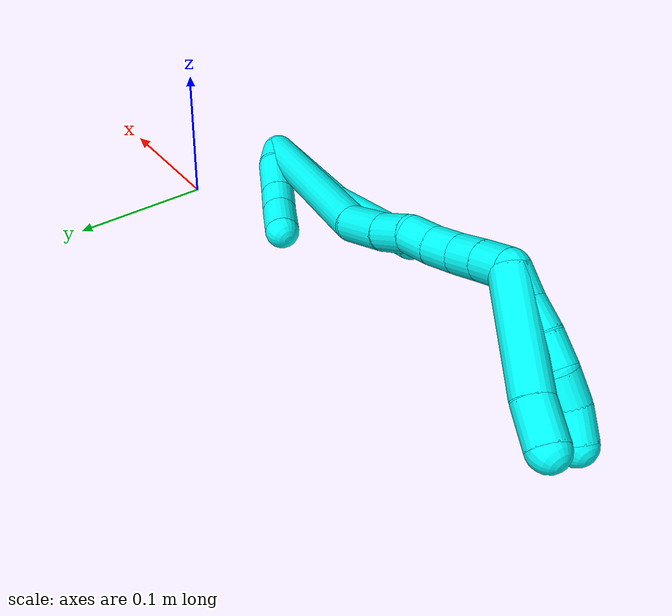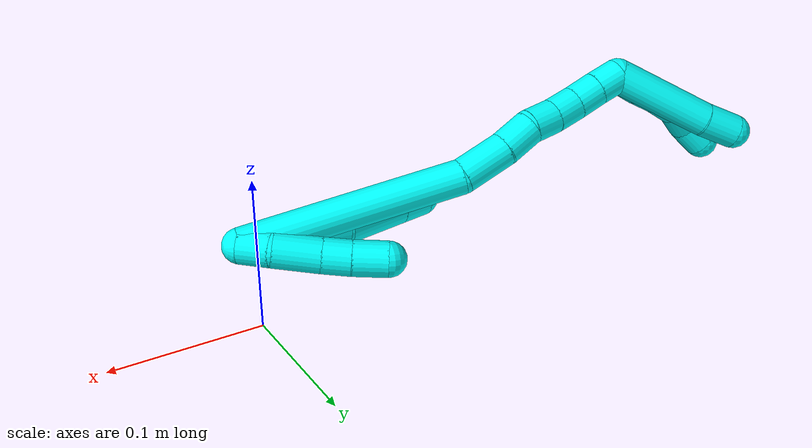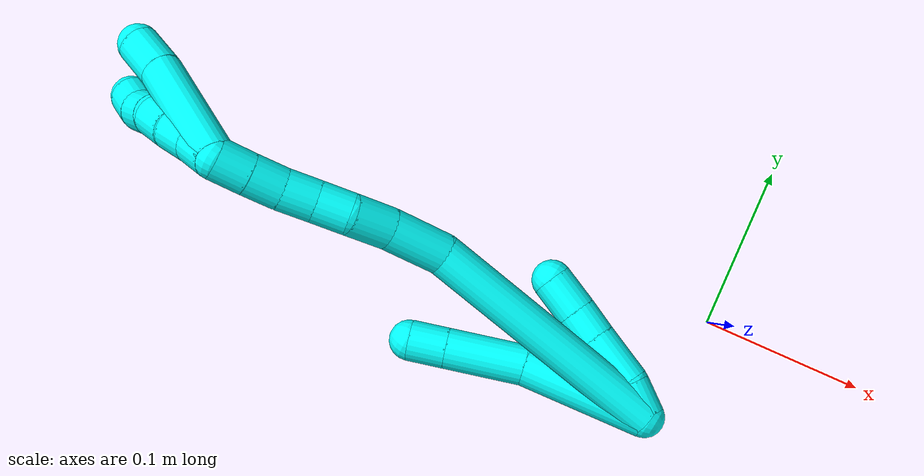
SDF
<sdf version="1.7">
 <world name="default">
  <model name="3">
   <static>0</static>
   <link name="3">
    <collision name="collision-cylinder-e_1_2_8">
     <pose>0.003504 0.00449 0.03862 -0.115741 0.089891 -0.005211</pose>
     <geometry><cylinder><radius>0.0125</radius><length>0.078076</length></cylinder></geometry>
     <surface>
      <friction><ode><mu>1.16</mu><mu2>1.16</mu2><slip1>0</slip1><slip2>0</slip2></ode></friction>
      <contact><ode><kp>1e+06</kp><kd>1</kd><max_vel>0</max_vel><min_depth>0.001</min_depth></ode></contact>
     </surface>
    </collision>
    <visual name="visual-cylinder-e_1_2_8">
     <pose>0.003504 0.00449 0.03862 -0.115741 0.089891 -0.005211</pose>
     <geometry><cylinder><radius>0.0125</radius><length>0.078076</length></cylinder></geometry>
     <material><ambient>0.003922 1 0.996078 1</ambient></material>
    </visual>
    <collision name="collision-cylinder-e_2_8_9">
     <pose>0.010168 0.016568 0.100272 -0.318256 0.129555 -0.02082</pose>
     <geometry><cylinder><radius>0.0125</radius><length>0.04891</length></cylinder></geometry>
     <surface>
      <friction><ode><mu>1.16</mu><mu2>1.16</mu2><slip1>0</slip1><slip2>0</slip2></ode></friction>
      <contact><ode><kp>1e+06</kp><kd>1</kd><max_vel>0</max_vel><min_depth>0.001</min_depth></ode></contact>
     </surface>
    </collision>
    <visual name="visual-cylinder-e_2_8_9">
     <pose>0.010168 0.016568 0.100272 -0.318256 0.129555 -0.02082</pose>
     <geometry><cylinder><radius>0.0125</radius><length>0.04891</length></cylinder></geometry>
     <material><ambient>0.003922 1 0.996078 1</ambient></material>
    </visual>
    <collision name="collision-cylinder-e_3_9_6">
     <pose>0.014789 0.027729 0.134145 -0.318373 0.127332 -0.020469</pose>
     <geometry><cylinder><radius>0.0125</radius><length>0.023015</length></cylinder></geometry>
     <surface>
      <friction><ode><mu>1.16</mu><mu2>1.16</mu2><slip1>0</slip1><slip2>0</slip2></ode></friction>
      <contact><ode><kp>1e+06</kp><kd>1</kd><max_vel>0</max_vel><min_depth>0.001</min_depth></ode></contact>
     </surface>
    </collision>
    <visual name="visual-cylinder-e_3_9_6">
     <pose>0.014789 0.027729 0.134145 -0.318373 0.127332 -0.020469</pose>
     <geometry><cylinder><radius>0.0125</radius><length>0.023015</length></cylinder></geometry>
     <material><ambient>0.003922 1 0.996078 1</ambient></material>
    </visual>
    <collision name="collision-cylinder-e_1_2_10">
     <pose>-0.003613 -0.005029 0.00914 0.503021 -0.333408 -0.086418</pose>
     <geometry><cylinder><radius>0.0125</radius><length>0.02208</length></cylinder></geometry>
     <surface>
      <friction><ode><mu>1.16</mu><mu2>1.16</mu2><slip1>0</slip1><slip2>0</slip2></ode></friction>
      <contact><ode><kp>1e+06</kp><kd>1</kd><max_vel>0</max_vel><min_depth>0.001</min_depth></ode></contact>
     </surface>
    </collision>
    <visual name="visual-cylinder-e_1_2_10">
     <pose>-0.003613 -0.005029 0.00914 0.503021 -0.333408 -0.086418</pose>
     <geometry><cylinder><radius>0.0125</radius><length>0.02208</length></cylinder></geometry>
     <material><ambient>0.003922 1 0.996078 1</ambient></material>
    </visual>
    <collision name="collision-cylinder-e_2_10_11">
     <pose>-0.009462 -0.015893 0.03366 0.36263 -0.135101 -0.024804</pose>
     <geometry><cylinder><radius>0.0125</radius><length>0.033202</length></cylinder></geometry>
     <surface>
      <friction><ode><mu>1.16</mu><mu2>1.16</mu2><slip1>0</slip1><slip2>0</slip2></ode></friction>
      <contact><ode><kp>1e+06</kp><kd>1</kd><max_vel>0</max_vel><min_depth>0.001</min_depth></ode></contact>
     </surface>
    </collision>
    <visual name="visual-cylinder-e_2_10_11">
     <pose>-0.009462 -0.015893 0.03366 0.36263 -0.135101 -0.024804</pose>
     <geometry><cylinder><radius>0.0125</radius><length>0.033202</length></cylinder></geometry>
     <material><ambient>0.003922 1 0.996078 1</ambient></material>
    </visual>
    <collision name="collision-cylinder-e_3_11_12">
     <pose>-0.013558 -0.025217 0.058283 0.360828 -0.186048 -0.03403</pose>
     <geometry><cylinder><radius>0.0125</radius><length>0.020106</length></cylinder></geometry>
     <surface>
      <friction><ode><mu>1.16</mu><mu2>1.16</mu2><slip1>0</slip1><slip2>0</slip2></ode></friction>
      <contact><ode><kp>1e+06</kp><kd>1</kd><max_vel>0</max_vel><min_depth>0.001</min_depth></ode></contact>
     </surface>
    </collision>
    <visual name="visual-cylinder-e_3_11_12">
     <pose>-0.013558 -0.025217 0.058283 0.360828 -0.186048 -0.03403</pose>
     <geometry><cylinder><radius>0.0125</radius><length>0.020106</length></cylinder></geometry>
     <material><ambient>0.003922 1 0.996078 1</ambient></material>
    </visual>
    <collision name="collision-cylinder-e_4_12_5">
     <pose>-0.018008 -0.03238 0.078981 0.31047 -0.212092 -0.033313</pose>
     <geometry><cylinder><radius>0.0125</radius><length>0.024612</length></cylinder></geometry>
     <surface>
      <friction><ode><mu>1.16</mu><mu2>1.16</mu2><slip1>0</slip1><slip2>0</slip2></ode></friction>
      <contact><ode><kp>1e+06</kp><kd>1</kd><max_vel>0</max_vel><min_depth>0.001</min_depth></ode></contact>
     </surface>
    </collision>
    <visual name="visual-cylinder-e_4_12_5">
     <pose>-0.018008 -0.03238 0.078981 0.31047 -0.212092 -0.033313</pose>
     <geometry><cylinder><radius>0.0125</radius><length>0.024612</length></cylinder></geometry>
     <material><ambient>0.003922 1 0.996078 1</ambient></material>
    </visual>
    <collision name="collision-cylinder-e_1_2_13">
     <pose>-0.02366 0.003061 0.074941 -0.04082 -0.305572 0.006287</pose>
     <geometry><cylinder><radius>0.0125</radius><length>0.157294</length></cylinder></geometry>
     <surface>
      <friction><ode><mu>1.16</mu><mu2>1.16</mu2><slip1>0</slip1><slip2>0</slip2></ode></friction>
      <contact><ode><kp>1e+06</kp><kd>1</kd><max_vel>0</max_vel><min_depth>0.001</min_depth></ode></contact>
     </surface>
    </collision>
    <visual name="visual-cylinder-e_1_2_13">
     <pose>-0.02366 0.003061 0.074941 -0.04082 -0.305572 0.006287</pose>
     <geometry><cylinder><radius>0.0125</radius><length>0.157294</length></cylinder></geometry>
     <material><ambient>0.003922 1 0.996078 1</ambient></material>
    </visual>
    <collision name="collision-cylinder-e_2_13_14">
     <pose>-0.053112 0.0119 0.16593 -0.345642 -0.327341 0.057641</pose>
     <geometry><cylinder><radius>0.0125</radius><length>0.036026</length></cylinder></geometry>
     <surface>
      <friction><ode><mu>1.16</mu><mu2>1.16</mu2><slip1>0</slip1><slip2>0</slip2></ode></friction>
      <contact><ode><kp>1e+06</kp><kd>1</kd><max_vel>0</max_vel><min_depth>0.001</min_depth></ode></contact>
     </surface>
    </collision>
    <visual name="visual-cylinder-e_2_13_14">
     <pose>-0.053112 0.0119 0.16593 -0.345642 -0.327341 0.057641</pose>
     <geometry><cylinder><radius>0.0125</radius><length>0.036026</length></cylinder></geometry>
     <material><ambient>0.003922 1 0.996078 1</ambient></material>
    </visual>
    <collision name="collision-cylinder-e_3_14_15">
     <pose>-0.063196 0.023038 0.192443 -0.473243 -0.350098 0.085244</pose>
     <geometry><cylinder><radius>0.0125</radius><length>0.025033</length></cylinder></geometry>
     <surface>
      <friction><ode><mu>1.16</mu><mu2>1.16</mu2><slip1>0</slip1><slip2>0</slip2></ode></friction>
      <contact><ode><kp>1e+06</kp><kd>1</kd><max_vel>0</max_vel><min_depth>0.001</min_depth></ode></contact>
     </surface>
    </collision>
    <visual name="visual-cylinder-e_3_14_15">
     <pose>-0.063196 0.023038 0.192443 -0.473243 -0.350098 0.085244</pose>
     <geometry><cylinder><radius>0.0125</radius><length>0.025033</length></cylinder></geometry>
     <material><ambient>0.003922 1 0.996078 1</ambient></material>
    </visual>
    <collision name="collision-cylinder-e_4_15_16">
     <pose>-0.06843 0.031355 0.212689 -0.293688 -0.091819 0.01359</pose>
     <geometry><cylinder><radius>0.0125</radius><length>0.020525</length></cylinder></geometry>
     <surface>
      <friction><ode><mu>1.16</mu><mu2>1.16</mu2><slip1>0</slip1><slip2>0</slip2></ode></friction>
      <contact><ode><kp>1e+06</kp><kd>1</kd><max_vel>0</max_vel><min_depth>0.001</min_depth></ode></contact>
     </surface>
    </collision>
    <visual name="visual-cylinder-e_4_15_16">
     <pose>-0.06843 0.031355 0.212689 -0.293688 -0.091819 0.01359</pose>
     <geometry><cylinder><radius>0.0125</radius><length>0.020525</length></cylinder></geometry>
     <material><ambient>0.003922 1 0.996078 1</ambient></material>
    </visual>
    <collision name="collision-cylinder-e_5_16_17">
     <pose>-0.071208 0.037861 0.23188 -0.360603 -0.180633 0.033013</pose>
     <geometry><cylinder><radius>0.0125</radius><length>0.020443</length></cylinder></geometry>
     <surface>
      <friction><ode><mu>1.16</mu><mu2>1.16</mu2><slip1>0</slip1><slip2>0</slip2></ode></friction>
      <contact><ode><kp>1e+06</kp><kd>1</kd><max_vel>0</max_vel><min_depth>0.001</min_depth></ode></contact>
     </surface>
    </collision>
    <visual name="visual-cylinder-e_5_16_17">
     <pose>-0.071208 0.037861 0.23188 -0.360603 -0.180633 0.033013</pose>
     <geometry><cylinder><radius>0.0125</radius><length>0.020443</length></cylinder></geometry>
     <material><ambient>0.003922 1 0.996078 1</ambient></material>
    </visual>
    <collision name="collision-cylinder-e_6_17_18">
     <pose>-0.076068 0.04477 0.250379 -0.354195 -0.302418 0.054527</pose>
     <geometry><cylinder><radius>0.0125</radius><length>0.020307</length></cylinder></geometry>
     <surface>
      <friction><ode><mu>1.16</mu><mu2>1.16</mu2><slip1>0</slip1><slip2>0</slip2></ode></friction>
      <contact><ode><kp>1e+06</kp><kd>1</kd><max_vel>0</max_vel><min_depth>0.001</min_depth></ode></contact>
     </surface>
    </collision>
    <visual name="visual-cylinder-e_6_17_18">
     <pose>-0.076068 0.04477 0.250379 -0.354195 -0.302418 0.054527</pose>
     <geometry><cylinder><radius>0.0125</radius><length>0.020307</length></cylinder></geometry>
     <material><ambient>0.003922 1 0.996078 1</ambient></material>
    </visual>
    <collision name="collision-cylinder-e_7_18_1">
     <pose>-0.082091 0.051226 0.2687 -0.323402 -0.298879 0.049111</pose>
     <geometry><cylinder><radius>0.0125</radius><length>0.020372</length></cylinder></geometry>
     <surface>
      <friction><ode><mu>1.16</mu><mu2>1.16</mu2><slip1>0</slip1><slip2>0</slip2></ode></friction>
      <contact><ode><kp>1e+06</kp><kd>1</kd><max_vel>0</max_vel><min_depth>0.001</min_depth></ode></contact>
     </surface>
    </collision>
    <visual name="visual-cylinder-e_7_18_1">
     <pose>-0.082091 0.051226 0.2687 -0.323402 -0.298879 0.049111</pose>
     <geometry><cylinder><radius>0.0125</radius><length>0.020372</length></cylinder></geometry>
     <material><ambient>0.003922 1 0.996078 1</ambient></material>
    </visual>
    <collision name="collision-cylinder-e_1_1_19">
     <pose>-0.079415 0.035801 0.309314 0.533085 0.154503 0.042263</pose>
     <geometry><cylinder><radius>0.0125</radius><length>0.07376</length></cylinder></geometry>
     <surface>
      <friction><ode><mu>1.16</mu><mu2>1.16</mu2><slip1>0</slip1><slip2>0</slip2></ode></friction>
      <contact><ode><kp>1e+06</kp><kd>1</kd><max_vel>0</max_vel><min_depth>0.001</min_depth></ode></contact>
     </surface>
    </collision>
    <visual name="visual-cylinder-e_1_1_19">
     <pose>-0.079415 0.035801 0.309314 0.533085 0.154503 0.042263</pose>
     <geometry><cylinder><radius>0.0125</radius><length>0.07376</length></cylinder></geometry>
     <material><ambient>0.003922 1 0.996078 1</ambient></material>
    </visual>
    <collision name="collision-cylinder-e_2_19_4">
     <pose>-0.071729 0.012086 0.352577 0.412377 0.153878 0.032246</pose>
     <geometry><cylinder><radius>0.0125</radius><length>0.02624</length></cylinder></geometry>
     <surface>
      <friction><ode><mu>1.16</mu><mu2>1.16</mu2><slip1>0</slip1><slip2>0</slip2></ode></friction>
      <contact><ode><kp>1e+06</kp><kd>1</kd><max_vel>0</max_vel><min_depth>0.001</min_depth></ode></contact>
     </surface>
    </collision>
    <visual name="visual-cylinder-e_2_19_4">
     <pose>-0.071729 0.012086 0.352577 0.412377 0.153878 0.032246</pose>
     <geometry><cylinder><radius>0.0125</radius><length>0.02624</length></cylinder></geometry>
     <material><ambient>0.003922 1 0.996078 1</ambient></material>
    </visual>
    <collision name="collision-cylinder-e_1_1_20">
     <pose>-0.081208 0.051219 0.286608 0.34317 0.398748 0.07</pose>
     <geometry><cylinder><radius>0.0125</radius><length>0.02</length></cylinder></geometry>
     <surface>
      <friction><ode><mu>1.16</mu><mu2>1.16</mu2><slip1>0</slip1><slip2>0</slip2></ode></friction>
      <contact><ode><kp>1e+06</kp><kd>1</kd><max_vel>0</max_vel><min_depth>0.001</min_depth></ode></contact>
     </surface>
    </collision>
    <visual name="visual-cylinder-e_1_1_20">
     <pose>-0.081208 0.051219 0.286608 0.34317 0.398748 0.07</pose>
     <geometry><cylinder><radius>0.0125</radius><length>0.02</length></cylinder></geometry>
     <material><ambient>0.003922 1 0.996078 1</ambient></material>
    </visual>
    <collision name="collision-cylinder-e_2_20_21">
     <pose>-0.073659 0.045913 0.304325 0.239238 0.375338 0.045642</pose>
     <geometry><cylinder><radius>0.0125</radius><length>0.02</length></cylinder></geometry>
     <surface>
      <friction><ode><mu>1.16</mu><mu2>1.16</mu2><slip1>0</slip1><slip2>0</slip2></ode></friction>
      <contact><ode><kp>1e+06</kp><kd>1</kd><max_vel>0</max_vel><min_depth>0.001</min_depth></ode></contact>
     </surface>
    </collision>
    <visual name="visual-cylinder-e_2_20_21">
     <pose>-0.073659 0.045913 0.304325 0.239238 0.375338 0.045642</pose>
     <geometry><cylinder><radius>0.0125</radius><length>0.02</length></cylinder></geometry>
     <material><ambient>0.003922 1 0.996078 1</ambient></material>
    </visual>
    <collision name="collision-cylinder-e_3_21_22">
     <pose>-0.065904 0.040646 0.321961 0.342228 0.421302 0.073865</pose>
     <geometry><cylinder><radius>0.0125</radius><length>0.02</length></cylinder></geometry>
     <surface>
      <friction><ode><mu>1.16</mu><mu2>1.16</mu2><slip1>0</slip1><slip2>0</slip2></ode></friction>
      <contact><ode><kp>1e+06</kp><kd>1</kd><max_vel>0</max_vel><min_depth>0.001</min_depth></ode></contact>
     </surface>
    </collision>
    <visual name="visual-cylinder-e_3_21_22">
     <pose>-0.065904 0.040646 0.321961 0.342228 0.421302 0.073865</pose>
     <geometry><cylinder><radius>0.0125</radius><length>0.02</length></cylinder></geometry>
     <material><ambient>0.003922 1 0.996078 1</ambient></material>
    </visual>
    <collision name="collision-cylinder-e_4_22_23">
     <pose>-0.055078 0.034422 0.337237 0.442046 0.739114 0.173634</pose>
     <geometry><cylinder><radius>0.0125</radius><length>0.02</length></cylinder></geometry>
     <surface>
      <friction><ode><mu>1.16</mu><mu2>1.16</mu2><slip1>0</slip1><slip2>0</slip2></ode></friction>
      <contact><ode><kp>1e+06</kp><kd>1</kd><max_vel>0</max_vel><min_depth>0.001</min_depth></ode></contact>
     </surface>
    </collision>
    <visual name="visual-cylinder-e_4_22_23">
     <pose>-0.055078 0.034422 0.337237 0.442046 0.739114 0.173634</pose>
     <geometry><cylinder><radius>0.0125</radius><length>0.02</length></cylinder></geometry>
     <material><ambient>0.003922 1 0.996078 1</ambient></material>
    </visual>
    <collision name="collision-cylinder-e_5_23_3">
     <pose>-0.043704 0.02616 0.351162 0.613466 0.482208 0.155445</pose>
     <geometry><cylinder><radius>0.0125</radius><length>0.02</length></cylinder></geometry>
     <surface>
      <friction><ode><mu>1.16</mu><mu2>1.16</mu2><slip1>0</slip1><slip2>0</slip2></ode></friction>
      <contact><ode><kp>1e+06</kp><kd>1</kd><max_vel>0</max_vel><min_depth>0.001</min_depth></ode></contact>
     </surface>
    </collision>
    <visual name="visual-cylinder-e_5_23_3">
     <pose>-0.043704 0.02616 0.351162 0.613466 0.482208 0.155445</pose>
     <geometry><cylinder><radius>0.0125</radius><length>0.02</length></cylinder></geometry>
     <material><ambient>0.003922 1 0.996078 1</ambient></material>
    </visual>
    <collision name="collision-sphere-3">
     <pose>-0.039067 0.021059 0.358406 0 -0 0</pose>
     <geometry><sphere><radius>0.0125</radius></sphere></geometry>
     <surface>
      <friction><ode><mu>1.16</mu><mu2>1.16</mu2><slip1>0</slip1><slip2>0</slip2></ode></friction>
      <contact><ode><kp>1e+06</kp><kd>1</kd><max_vel>0</max_vel><min_depth>0.001</min_depth></ode></contact>
     </surface>
    </collision>
    <visual name="visual-sphere-3">
     <pose>-0.039067 0.021059 0.358406 0 -0 0</pose>
     <geometry><sphere><radius>0.0125</radius></sphere></geometry>
     <material><ambient>0.003922 1 0.996078 1</ambient></material>
    </visual>
    <collision name="collision-sphere-23">
     <pose>-0.048342 0.03126 0.343917 0 -0 0</pose>
     <geometry><sphere><radius>0.0125</radius></sphere></geometry>
     <surface>
      <friction><ode><mu>1.16</mu><mu2>1.16</mu2><slip1>0</slip1><slip2>0</slip2></ode></friction>
      <contact><ode><kp>1e+06</kp><kd>1</kd><max_vel>0</max_vel><min_depth>0.001</min_depth></ode></contact>
     </surface>
    </collision>
    <visual name="visual-sphere-23">
     <pose>-0.048342 0.03126 0.343917 0 -0 0</pose>
     <geometry><sphere><radius>0.0125</radius></sphere></geometry>
     <material><ambient>0.003922 1 0.996078 1</ambient></material>
    </visual>
    <collision name="collision-sphere-22">
     <pose>-0.061814 0.037584 0.330557 0 -0 0</pose>
     <geometry><sphere><radius>0.0125</radius></sphere></geometry>
     <surface>
      <friction><ode><mu>1.16</mu><mu2>1.16</mu2><slip1>0</slip1><slip2>0</slip2></ode></friction>
      <contact><ode><kp>1e+06</kp><kd>1</kd><max_vel>0</max_vel><min_depth>0.001</min_depth></ode></contact>
     </surface>
    </collision>
    <visual name="visual-sphere-22">
     <pose>-0.061814 0.037584 0.330557 0 -0 0</pose>
     <geometry><sphere><radius>0.0125</radius></sphere></geometry>
     <material><ambient>0.003922 1 0.996078 1</ambient></material>
    </visual>
    <collision name="collision-sphere-21">
     <pose>-0.069993 0.043709 0.313364 0 -0 0</pose>
     <geometry><sphere><radius>0.0125</radius></sphere></geometry>
     <surface>
      <friction><ode><mu>1.16</mu><mu2>1.16</mu2><slip1>0</slip1><slip2>0</slip2></ode></friction>
      <contact><ode><kp>1e+06</kp><kd>1</kd><max_vel>0</max_vel><min_depth>0.001</min_depth></ode></contact>
     </surface>
    </collision>
    <visual name="visual-sphere-21">
     <pose>-0.069993 0.043709 0.313364 0 -0 0</pose>
     <geometry><sphere><radius>0.0125</radius></sphere></geometry>
     <material><ambient>0.003922 1 0.996078 1</ambient></material>
    </visual>
    <collision name="collision-sphere-20">
     <pose>-0.077325 0.048118 0.295286 0 -0 0</pose>
     <geometry><sphere><radius>0.0125</radius></sphere></geometry>
     <surface>
      <friction><ode><mu>1.16</mu><mu2>1.16</mu2><slip1>0</slip1><slip2>0</slip2></ode></friction>
      <contact><ode><kp>1e+06</kp><kd>1</kd><max_vel>0</max_vel><min_depth>0.001</min_depth></ode></contact>
     </surface>
    </collision>
    <visual name="visual-sphere-20">
     <pose>-0.077325 0.048118 0.295286 0 -0 0</pose>
     <geometry><sphere><radius>0.0125</radius></sphere></geometry>
     <material><ambient>0.003922 1 0.996078 1</ambient></material>
    </visual>
    <collision name="collision-sphere-4">
     <pose>-0.069718 0.006889 0.364455 0 -0 0</pose>
     <geometry><sphere><radius>0.0125</radius></sphere></geometry>
     <surface>
      <friction><ode><mu>1.16</mu><mu2>1.16</mu2><slip1>0</slip1><slip2>0</slip2></ode></friction>
      <contact><ode><kp>1e+06</kp><kd>1</kd><max_vel>0</max_vel><min_depth>0.001</min_depth></ode></contact>
     </surface>
    </collision>
    <visual name="visual-sphere-4">
     <pose>-0.069718 0.006889 0.364455 0 -0 0</pose>
     <geometry><sphere><radius>0.0125</radius></sphere></geometry>
     <material><ambient>0.003922 1 0.996078 1</ambient></material>
    </visual>
    <collision name="collision-sphere-11">
     <pose>-0.011698 -0.021729 0.049039 0 -0 0</pose>
     <geometry><sphere><radius>0.0125</radius></sphere></geometry>
     <surface>
      <friction><ode><mu>1.16</mu><mu2>1.16</mu2><slip1>0</slip1><slip2>0</slip2></ode></friction>
      <contact><ode><kp>1e+06</kp><kd>1</kd><max_vel>0</max_vel><min_depth>0.001</min_depth></ode></contact>
     </surface>
    </collision>
    <visual name="visual-sphere-11">
     <pose>-0.011698 -0.021729 0.049039 0 -0 0</pose>
     <geometry><sphere><radius>0.0125</radius></sphere></geometry>
     <material><ambient>0.003922 1 0.996078 1</ambient></material>
    </visual>
    <collision name="collision-sphere-10">
     <pose>-0.007226 -0.010058 0.01828 0 -0 0</pose>
     <geometry><sphere><radius>0.0125</radius></sphere></geometry>
     <surface>
      <friction><ode><mu>1.16</mu><mu2>1.16</mu2><slip1>0</slip1><slip2>0</slip2></ode></friction>
      <contact><ode><kp>1e+06</kp><kd>1</kd><max_vel>0</max_vel><min_depth>0.001</min_depth></ode></contact>
     </surface>
    </collision>
    <visual name="visual-sphere-10">
     <pose>-0.007226 -0.010058 0.01828 0 -0 0</pose>
     <geometry><sphere><radius>0.0125</radius></sphere></geometry>
     <material><ambient>0.003922 1 0.996078 1</ambient></material>
    </visual>
    <collision name="collision-sphere-6">
     <pose>0.01625 0.031302 0.144986 0 -0 0</pose>
     <geometry><sphere><radius>0.0125</radius></sphere></geometry>
     <surface>
      <friction><ode><mu>1.16</mu><mu2>1.16</mu2><slip1>0</slip1><slip2>0</slip2></ode></friction>
      <contact><ode><kp>1e+06</kp><kd>1</kd><max_vel>0</max_vel><min_depth>0.001</min_depth></ode></contact>
     </surface>
    </collision>
    <visual name="visual-sphere-6">
     <pose>0.01625 0.031302 0.144986 0 -0 0</pose>
     <geometry><sphere><radius>0.0125</radius></sphere></geometry>
     <material><ambient>0.003922 1 0.996078 1</ambient></material>
    </visual>
    <collision name="collision-sphere-9">
     <pose>0.013328 0.024156 0.123304 0 -0 0</pose>
     <geometry><sphere><radius>0.0125</radius></sphere></geometry>
     <surface>
      <friction><ode><mu>1.16</mu><mu2>1.16</mu2><slip1>0</slip1><slip2>0</slip2></ode></friction>
      <contact><ode><kp>1e+06</kp><kd>1</kd><max_vel>0</max_vel><min_depth>0.001</min_depth></ode></contact>
     </surface>
    </collision>
    <visual name="visual-sphere-9">
     <pose>0.013328 0.024156 0.123304 0 -0 0</pose>
     <geometry><sphere><radius>0.0125</radius></sphere></geometry>
     <material><ambient>0.003922 1 0.996078 1</ambient></material>
    </visual>
    <collision name="collision-sphere-2">
     <geometry><sphere><radius>0.0125</radius></sphere></geometry>
     <surface>
      <friction><ode><mu>1.16</mu><mu2>1.16</mu2><slip1>0</slip1><slip2>0</slip2></ode></friction>
      <contact><ode><kp>1e+06</kp><kd>1</kd><max_vel>0</max_vel><min_depth>0.001</min_depth></ode></contact>
     </surface>
    </collision>
    <visual name="visual-sphere-2">
     <geometry><sphere><radius>0.0125</radius></sphere></geometry>
     <material><ambient>0.003922 1 0.996078 1</ambient></material>
    </visual>
    <collision name="collision-sphere-19">
     <pose>-0.07374 0.017282 0.340698 0 -0 0</pose>
     <geometry><sphere><radius>0.0125</radius></sphere></geometry>
     <surface>
      <friction><ode><mu>1.16</mu><mu2>1.16</mu2><slip1>0</slip1><slip2>0</slip2></ode></friction>
      <contact><ode><kp>1e+06</kp><kd>1</kd><max_vel>0</max_vel><min_depth>0.001</min_depth></ode></contact>
     </surface>
    </collision>
    <visual name="visual-sphere-19">
     <pose>-0.07374 0.017282 0.340698 0 -0 0</pose>
     <geometry><sphere><radius>0.0125</radius></sphere></geometry>
     <material><ambient>0.003922 1 0.996078 1</ambient></material>
    </visual>
    <collision name="collision-sphere-8">
     <pose>0.007009 0.00898 0.07724 0 -0 0</pose>
     <geometry><sphere><radius>0.0125</radius></sphere></geometry>
     <surface>
      <friction><ode><mu>1.16</mu><mu2>1.16</mu2><slip1>0</slip1><slip2>0</slip2></ode></friction>
      <contact><ode><kp>1e+06</kp><kd>1</kd><max_vel>0</max_vel><min_depth>0.001</min_depth></ode></contact>
     </surface>
    </collision>
    <visual name="visual-sphere-8">
     <pose>0.007009 0.00898 0.07724 0 -0 0</pose>
     <geometry><sphere><radius>0.0125</radius></sphere></geometry>
     <material><ambient>0.003922 1 0.996078 1</ambient></material>
    </visual>
    <collision name="collision-sphere-12">
     <pose>-0.015417 -0.028704 0.067526 0 -0 0</pose>
     <geometry><sphere><radius>0.0125</radius></sphere></geometry>
     <surface>
      <friction><ode><mu>1.16</mu><mu2>1.16</mu2><slip1>0</slip1><slip2>0</slip2></ode></friction>
      <contact><ode><kp>1e+06</kp><kd>1</kd><max_vel>0</max_vel><min_depth>0.001</min_depth></ode></contact>
     </surface>
    </collision>
    <visual name="visual-sphere-12">
     <pose>-0.015417 -0.028704 0.067526 0 -0 0</pose>
     <geometry><sphere><radius>0.0125</radius></sphere></geometry>
     <material><ambient>0.003922 1 0.996078 1</ambient></material>
    </visual>
    <collision name="collision-sphere-5">
     <pose>-0.020598 -0.036055 0.090436 0 -0 0</pose>
     <geometry><sphere><radius>0.0125</radius></sphere></geometry>
     <surface>
      <friction><ode><mu>1.16</mu><mu2>1.16</mu2><slip1>0</slip1><slip2>0</slip2></ode></friction>
      <contact><ode><kp>1e+06</kp><kd>1</kd><max_vel>0</max_vel><min_depth>0.001</min_depth></ode></contact>
     </surface>
    </collision>
    <visual name="visual-sphere-5">
     <pose>-0.020598 -0.036055 0.090436 0 -0 0</pose>
     <geometry><sphere><radius>0.0125</radius></sphere></geometry>
     <material><ambient>0.003922 1 0.996078 1</ambient></material>
    </visual>
    <collision name="collision-sphere-13">
     <pose>-0.04732 0.006122 0.149882 0 -0 0</pose>
     <geometry><sphere><radius>0.0125</radius></sphere></geometry>
     <surface>
      <friction><ode><mu>1.16</mu><mu2>1.16</mu2><slip1>0</slip1><slip2>0</slip2></ode></friction>
      <contact><ode><kp>1e+06</kp><kd>1</kd><max_vel>0</max_vel><min_depth>0.001</min_depth></ode></contact>
     </surface>
    </collision>
    <visual name="visual-sphere-13">
     <pose>-0.04732 0.006122 0.149882 0 -0 0</pose>
     <geometry><sphere><radius>0.0125</radius></sphere></geometry>
     <material><ambient>0.003922 1 0.996078 1</ambient></material>
    </visual>
    <collision name="collision-sphere-14">
     <pose>-0.058903 0.017679 0.181978 0 -0 0</pose>
     <geometry><sphere><radius>0.0125</radius></sphere></geometry>
     <surface>
      <friction><ode><mu>1.16</mu><mu2>1.16</mu2><slip1>0</slip1><slip2>0</slip2></ode></friction>
      <contact><ode><kp>1e+06</kp><kd>1</kd><max_vel>0</max_vel><min_depth>0.001</min_depth></ode></contact>
     </surface>
    </collision>
    <visual name="visual-sphere-14">
     <pose>-0.058903 0.017679 0.181978 0 -0 0</pose>
     <geometry><sphere><radius>0.0125</radius></sphere></geometry>
     <material><ambient>0.003922 1 0.996078 1</ambient></material>
    </visual>
    <collision name="collision-sphere-15">
     <pose>-0.067489 0.028396 0.202907 0 -0 0</pose>
     <geometry><sphere><radius>0.0125</radius></sphere></geometry>
     <surface>
      <friction><ode><mu>1.16</mu><mu2>1.16</mu2><slip1>0</slip1><slip2>0</slip2></ode></friction>
      <contact><ode><kp>1e+06</kp><kd>1</kd><max_vel>0</max_vel><min_depth>0.001</min_depth></ode></contact>
     </surface>
    </collision>
    <visual name="visual-sphere-15">
     <pose>-0.067489 0.028396 0.202907 0 -0 0</pose>
     <geometry><sphere><radius>0.0125</radius></sphere></geometry>
     <material><ambient>0.003922 1 0.996078 1</ambient></material>
    </visual>
    <collision name="collision-sphere-16">
     <pose>-0.069371 0.034313 0.222471 0 -0 0</pose>
     <geometry><sphere><radius>0.0125</radius></sphere></geometry>
     <surface>
      <friction><ode><mu>1.16</mu><mu2>1.16</mu2><slip1>0</slip1><slip2>0</slip2></ode></friction>
      <contact><ode><kp>1e+06</kp><kd>1</kd><max_vel>0</max_vel><min_depth>0.001</min_depth></ode></contact>
     </surface>
    </collision>
    <visual name="visual-sphere-16">
     <pose>-0.069371 0.034313 0.222471 0 -0 0</pose>
     <geometry><sphere><radius>0.0125</radius></sphere></geometry>
     <material><ambient>0.003922 1 0.996078 1</ambient></material>
    </visual>
    <collision name="collision-sphere-17">
     <pose>-0.073044 0.041409 0.241288 0 -0 0</pose>
     <geometry><sphere><radius>0.0125</radius></sphere></geometry>
     <surface>
      <friction><ode><mu>1.16</mu><mu2>1.16</mu2><slip1>0</slip1><slip2>0</slip2></ode></friction>
      <contact><ode><kp>1e+06</kp><kd>1</kd><max_vel>0</max_vel><min_depth>0.001</min_depth></ode></contact>
     </surface>
    </collision>
    <visual name="visual-sphere-17">
     <pose>-0.073044 0.041409 0.241288 0 -0 0</pose>
     <geometry><sphere><radius>0.0125</radius></sphere></geometry>
     <material><ambient>0.003922 1 0.996078 1</ambient></material>
    </visual>
    <collision name="collision-sphere-18">
     <pose>-0.079092 0.048132 0.259471 0 -0 0</pose>
     <geometry><sphere><radius>0.0125</radius></sphere></geometry>
     <surface>
      <friction><ode><mu>1.16</mu><mu2>1.16</mu2><slip1>0</slip1><slip2>0</slip2></ode></friction>
      <contact><ode><kp>1e+06</kp><kd>1</kd><max_vel>0</max_vel><min_depth>0.001</min_depth></ode></contact>
     </surface>
    </collision>
    <visual name="visual-sphere-18">
     <pose>-0.079092 0.048132 0.259471 0 -0 0</pose>
     <geometry><sphere><radius>0.0125</radius></sphere></geometry>
     <material><ambient>0.003922 1 0.996078 1</ambient></material>
    </visual>
    <collision name="collision-sphere-1">
     <pose>-0.08509 0.054319 0.27793 0 -0 0</pose>
     <geometry><sphere><radius>0.0125</radius></sphere></geometry>
     <surface>
      <friction><ode><mu>1.16</mu><mu2>1.16</mu2><slip1>0</slip1><slip2>0</slip2></ode></friction>
      <contact><ode><kp>1e+06</kp><kd>1</kd><max_vel>0</max_vel><min_depth>0.001</min_depth></ode></contact>
     </surface>
    </collision>
    <visual name="visual-sphere-1">
     <pose>-0.08509 0.054319 0.27793 0 -0 0</pose>
     <geometry><sphere><radius>0.0125</radius></sphere></geometry>
     <material><ambient>0.003922 1 0.996078 1</ambient></material>
    </visual>
    <inertial>
     <pose>-0.036565 0.015518 0.162376 0 -0 0</pose>
     <mass>0.75</mass>
     <inertia>
      <ixx>0.00044</ixx>
      <ixy>0</ixy>
      <ixz>0</ixz>
      <iyy>0.000449</iyy>
      <iyz>0</iyz>
      <izz>0.000142</izz>
     </inertia>
    </inertial>
   </link>
   <pose>-0.01486 -0.068497 0.021038 1.73113 1.00283 -1.56835</pose>
  </model>
 </world>
</sdf>
